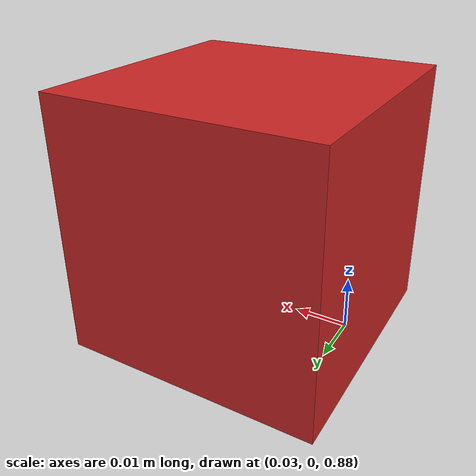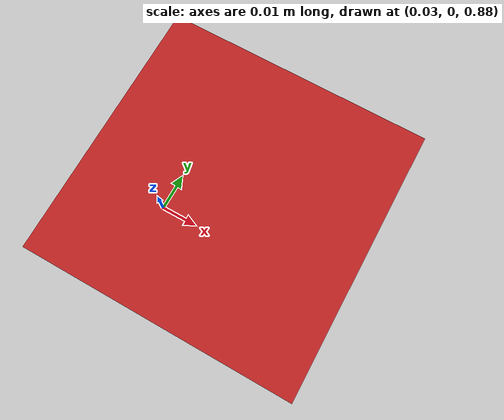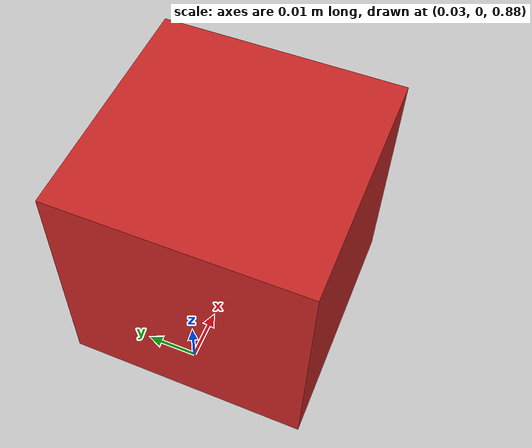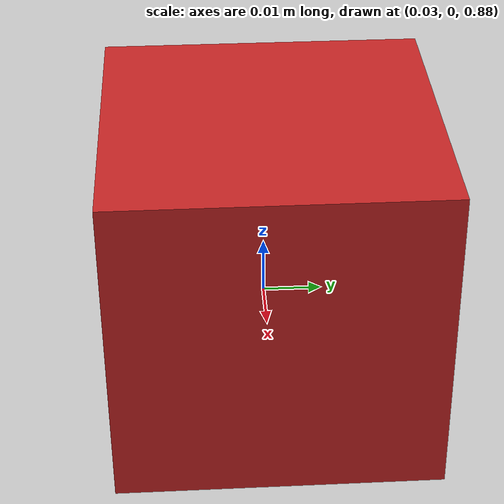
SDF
<sdf version="1.6">
 <world name="default">
  <light name="sun" type="directional">
   <pose>0 0 10 0 -0 0</pose>
   <diffuse>0.8 0.8 0.8 1</diffuse>
   <specular>0.2 0.2 0.2 1</specular>
   <attenuation>
    <range>1000</range>
    <constant>0.9</constant>
    <linear>0.01</linear>
    <quadratic>0.001</quadratic>
   </attenuation>
   <direction>-0.5 0.1 -0.9</direction>
  </light>
  <model name="ground_plane">
   <static>1</static>
   <link name="link">
    <collision name="collision">
     <geometry><plane><normal>0 0 1</normal><size>100 100</size></plane></geometry>
     <surface><friction><ode><mu>100</mu><mu2>50</mu2></ode></friction></surface>
    </collision>
    <visual name="visual">
     <cast_shadows>0</cast_shadows>
     <geometry><plane><normal>0 0 1</normal><size>100 100</size></plane></geometry>
     <material>
      <script><uri>file://media/materials/scripts/gazebo.material</uri><name>Gazebo/Grey</name></script>
     </material>
    </visual>
   </link>
  </model>
  <gravity>0 0 -9.8</gravity>
  <magnetic_field>6e-06 2.3e-05 -4.2e-05</magnetic_field>
  <atmosphere type="adiabatic"/>
  <physics name="default_physics" default="0" type="ode">
   <max_step_size>0.001</max_step_size>
   <real_time_factor>1</real_time_factor>
   <real_time_update_rate>1000</real_time_update_rate>
  </physics>
  <scene><ambient>0.4 0.4 0.4 1</ambient><background>0.7 0.7 0.7 1</background><shadows>1</shadows></scene>
  <spherical_coordinates>
   <surface_model>EARTH_WGS84</surface_model>
   <latitude_deg>0</latitude_deg>
   <longitude_deg>0</longitude_deg>
   <elevation>0</elevation>
   <heading_deg>0</heading_deg>
  </spherical_coordinates>
  <model name="cam">
   <link name="camera_link">
    <pose>0.05 0 0.9 0 -0 0</pose>
    <inertial>
     <mass>1e-05</mass>
     <inertia><ixx>1e-06</ixx><ixy>0</ixy><ixz>0</ixz><iyy>1e-06</iyy><iyz>0</iyz><izz>1e-06</izz></inertia>
    </inertial>
    <collision name="camera_link_collision">
     <geometry><box><size>0.05 0.05 0.05</size></box></geometry>
     <surface><friction><ode><mu>0.2</mu><mu2>0.2</mu2></ode></friction></surface>
    </collision>
    <visual name="camera_link_visual">
     <geometry><box><size>0.05 0.05 0.05</size></box></geometry>
     <material>
      <script><name>Gazebo/Red</name><uri>file://media/materials/scripts/gazebo.material</uri></script>
     </material>
    </visual>
    <sensor name="camera1" type="camera">
     <update_rate>30</update_rate>
     <camera name="head">
      <horizontal_fov>1.39626</horizontal_fov>
      <image><width>800</width><height>800</height><format>R8G8B8</format></image>
      <clip><near>0.02</near><far>300</far></clip>
      <noise><type>gaussian</type><mean>0</mean><stddev>0.007</stddev></noise>
     </camera>
     <plugin name="camera_controller" filename="libgazebo_ros_camera.so">
      <alwaysOn>true</alwaysOn>
      <updateRate>0.0</updateRate>
      <cameraName>cam1/camera1</cameraName>
      <imageTopicName>image_raw</imageTopicName>
      <cameraInfoTopicName>camera_info</cameraInfoTopicName>
      <frameName>camera_link_optical</frameName>
      <hackBaseline>0.0</hackBaseline>
      <distortionK1>0.0</distortionK1>
      <distortionK2>0.0</distortionK2>
      <distortionK3>0.0</distortionK3>
      <distortionT1>0.0</distortionT1>
      <distortionT2>0.0</distortionT2>
      <CxPrime>0</CxPrime>
      <Cx>0.0</Cx>
      <Cy>0.0</Cy>
      <focalLength>0.0</focalLength>
      <robotNamespace>/</robotNamespace>
     </plugin>
    </sensor>
   </link>
   <joint name="camera_joint" type="fixed"><child>camera_link</child><parent>world</parent></joint>
  </model>
 </world>
</sdf>
